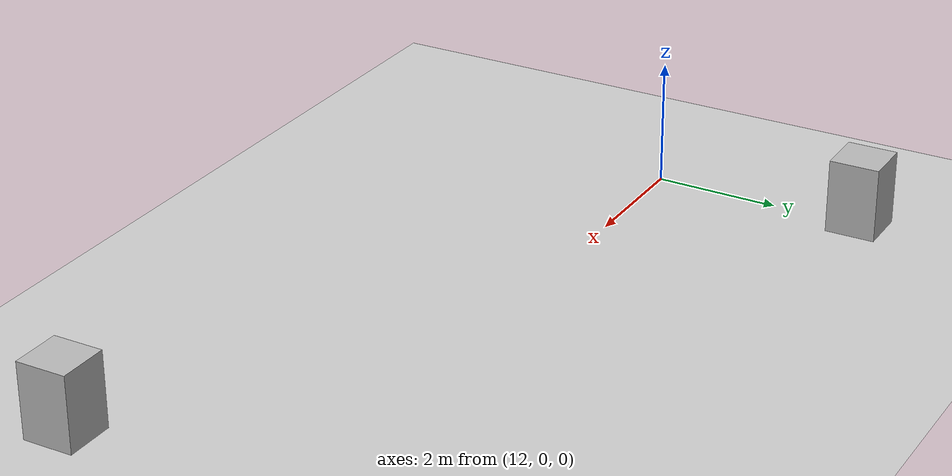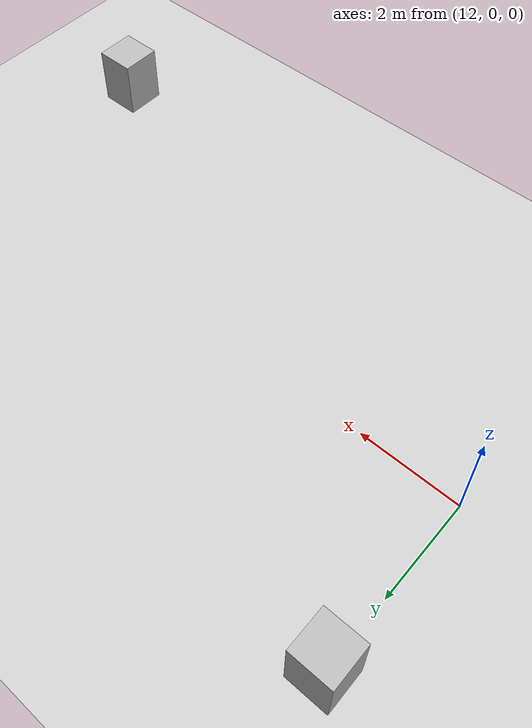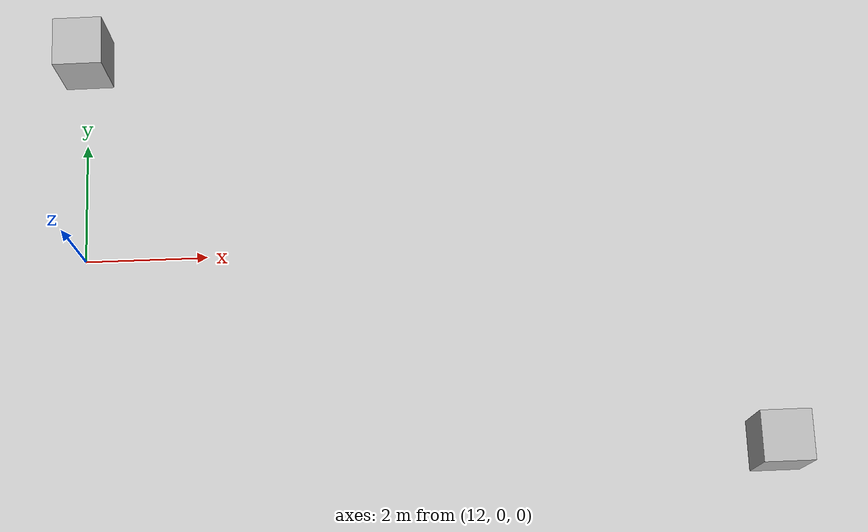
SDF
<?xml version="1.0"?>
<sdf version="1.6">
  <world name="v2-04f-cruise-s4801">
    <gravity>0 0 -9.81</gravity>
    <physics name="v2_deterministic" type="ode">
      <max_step_size>0.002</max_step_size>
      <real_time_update_rate>500</real_time_update_rate>
    </physics>
    <include>
      <uri>model://sun</uri>
    </include>
    <include>
      <uri>model://ground_plane</uri>
    </include>
    <model name="cruise-left">
      <static>true</static>
      <pose>12.027123739 3.440429956 0.600000000 0 0 0.007817498</pose>
      <link name="link">
        <collision name="collision">
          <geometry>
            <box>
              <size>0.800000 0.800000 1.200000</size>
            </box>
          </geometry>
        </collision>
        <visual name="visual">
          <geometry>
            <box>
              <size>0.800000 0.800000 1.200000</size>
            </box>
          </geometry>
        </visual>
      </link>
    </model>
    <model name="cruise-right">
      <static>true</static>
      <pose>23.030466532 -3.469807428 0.600000000 0 0 -0.000358306</pose>
      <link name="link">
        <collision name="collision">
          <geometry>
            <box>
              <size>0.800000 0.800000 1.200000</size>
            </box>
          </geometry>
        </collision>
        <visual name="visual">
          <geometry>
            <box>
              <size>0.800000 0.800000 1.200000</size>
            </box>
          </geometry>
        </visual>
      </link>
    </model>
  </world>
</sdf>
